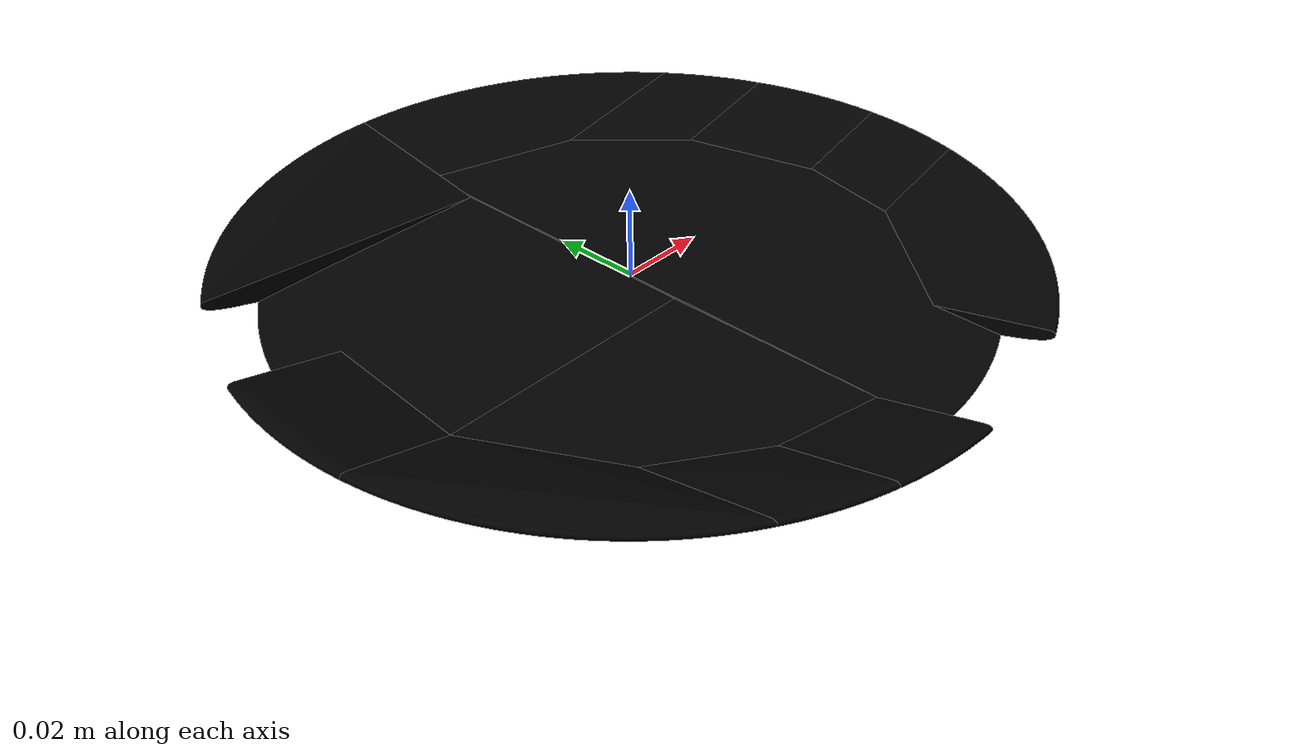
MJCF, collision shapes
<mujoco model="plate_2">
  <asset>
    <mesh file="visual/model_normalized_0.obj" name="model_normalized_0_vis" scale="0.175 0.175 0.175" refquat="1.0 0.0 0.0 0.0" />
    <material name="None.008" specular="0.5" shininess="0.25" rgba="0.800000 0.800000 0.800000 1.0" />
    <mesh file="collision/model_collision_0.obj" name="model_collision_0" scale="0.175 0.175 0.175" refquat="1.0 0.0 0.0 0.0" />
    <mesh file="collision/model_collision_1.obj" name="model_collision_1" scale="0.175 0.175 0.175" refquat="1.0 0.0 0.0 0.0" />
    <mesh file="collision/model_collision_2.obj" name="model_collision_2" scale="0.175 0.175 0.175" refquat="1.0 0.0 0.0 0.0" />
    <mesh file="collision/model_collision_3.obj" name="model_collision_3" scale="0.175 0.175 0.175" refquat="1.0 0.0 0.0 0.0" />
    <mesh file="collision/model_collision_4.obj" name="model_collision_4" scale="0.175 0.175 0.175" refquat="1.0 0.0 0.0 0.0" />
    <mesh file="collision/model_collision_5.obj" name="model_collision_5" scale="0.175 0.175 0.175" refquat="1.0 0.0 0.0 0.0" />
    <mesh file="collision/model_collision_6.obj" name="model_collision_6" scale="0.175 0.175 0.175" refquat="1.0 0.0 0.0 0.0" />
    <mesh file="collision/model_collision_7.obj" name="model_collision_7" scale="0.175 0.175 0.175" refquat="1.0 0.0 0.0 0.0" />
    <mesh file="collision/model_collision_8.obj" name="model_collision_8" scale="0.175 0.175 0.175" refquat="1.0 0.0 0.0 0.0" />
    <mesh file="collision/model_collision_9.obj" name="model_collision_9" scale="0.175 0.175 0.175" refquat="1.0 0.0 0.0 0.0" />
    <mesh file="collision/model_collision_10.obj" name="model_collision_10" scale="0.175 0.175 0.175" refquat="1.0 0.0 0.0 0.0" />
    <mesh file="collision/model_collision_11.obj" name="model_collision_11" scale="0.175 0.175 0.175" refquat="1.0 0.0 0.0 0.0" />
    <mesh file="collision/model_collision_12.obj" name="model_collision_12" scale="0.175 0.175 0.175" refquat="1.0 0.0 0.0 0.0" />
  </asset>
  <default>
    <default class="region">
      <geom group="1" conaffinity="0" contype="0" rgba="0 1 0 0" />
    </default>
  </default>
  <worldbody>
    <body>
      <body name="object">
        <geom density="0" type="mesh" mesh="model_normalized_0_vis" conaffinity="0" contype="0" group="2" material="None.008" mass="0.075" />
        <geom class="region" name="reg_bbox" type="box" pos="0.0 0.0 -1.260437500000093e-05" size="0.08633632349999999 0.08633632349999999 0.008686383124999999" />
        <geom solimp="0.998 0.998 0.001" solref="0.004 1" density="0" friction="0.6 0.03 0.003" type="mesh" group="3" rgba="0 0 0 0" mesh="model_collision_0" condim="6" priority="1" />
        <geom solimp="0.998 0.998 0.001" solref="0.004 1" density="0" friction="0.6 0.03 0.003" type="mesh" group="3" rgba="0 0 0 0" mesh="model_collision_1" condim="6" priority="1" />
        <geom solimp="0.998 0.998 0.001" solref="0.004 1" density="0" friction="0.6 0.03 0.003" type="mesh" group="3" rgba="0 0 0 0" mesh="model_collision_2" condim="6" priority="1" />
        <geom solimp="0.998 0.998 0.001" solref="0.004 1" density="0" friction="0.6 0.03 0.003" type="mesh" group="3" rgba="0 0 0 0" mesh="model_collision_3" condim="6" priority="1" />
        <geom solimp="0.998 0.998 0.001" solref="0.004 1" density="0" friction="0.6 0.03 0.003" type="mesh" group="3" rgba="0 0 0 0" mesh="model_collision_4" condim="6" priority="1" />
        <geom solimp="0.998 0.998 0.001" solref="0.004 1" density="0" friction="0.6 0.03 0.003" type="mesh" group="3" rgba="0 0 0 0" mesh="model_collision_5" condim="6" priority="1" />
        <geom solimp="0.998 0.998 0.001" solref="0.004 1" density="0" friction="0.6 0.03 0.003" type="mesh" group="3" rgba="0 0 0 0" mesh="model_collision_6" condim="6" priority="1" />
        <geom solimp="0.998 0.998 0.001" solref="0.004 1" density="0" friction="0.6 0.03 0.003" type="mesh" group="3" rgba="0 0 0 0" mesh="model_collision_7" condim="6" priority="1" />
        <geom solimp="0.998 0.998 0.001" solref="0.004 1" density="0" friction="0.6 0.03 0.003" type="mesh" group="3" rgba="0 0 0 0" mesh="model_collision_8" condim="6" priority="1" />
        <geom solimp="0.998 0.998 0.001" solref="0.004 1" density="0" friction="0.6 0.03 0.003" type="mesh" group="3" rgba="0 0 0 0" mesh="model_collision_9" condim="6" priority="1" />
        <geom solimp="0.998 0.998 0.001" solref="0.004 1" density="0" friction="0.6 0.03 0.003" type="mesh" group="3" rgba="0 0 0 0" mesh="model_collision_10" condim="6" priority="1" />
        <geom solimp="0.998 0.998 0.001" solref="0.004 1" density="0" friction="0.6 0.03 0.003" type="mesh" group="3" rgba="0 0 0 0" mesh="model_collision_11" condim="6" priority="1" />
        <geom solimp="0.998 0.998 0.001" solref="0.004 1" density="0" friction="0.6 0.03 0.003" type="mesh" group="3" rgba="0 0 0 0" mesh="model_collision_12" condim="6" priority="1" />
      </body>
    </body>
  </worldbody>
</mujoco>
